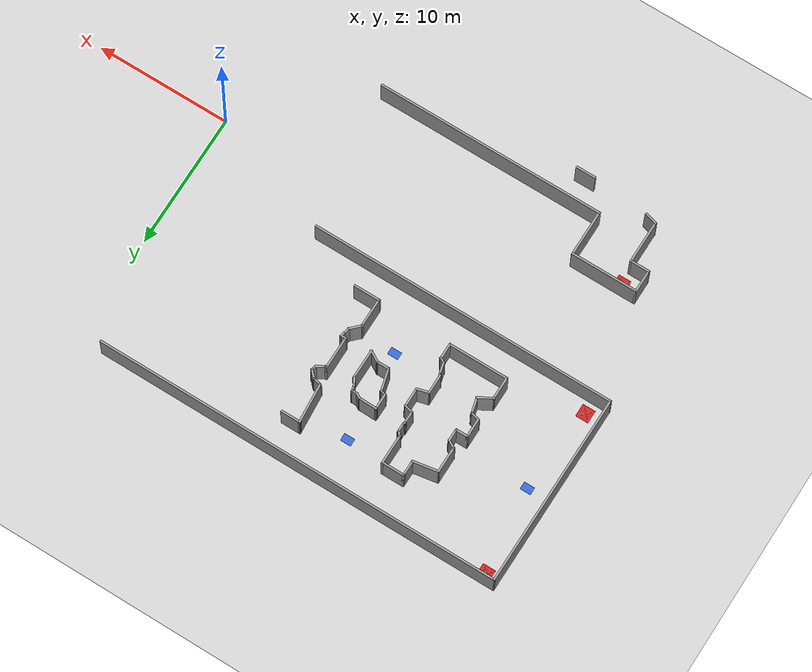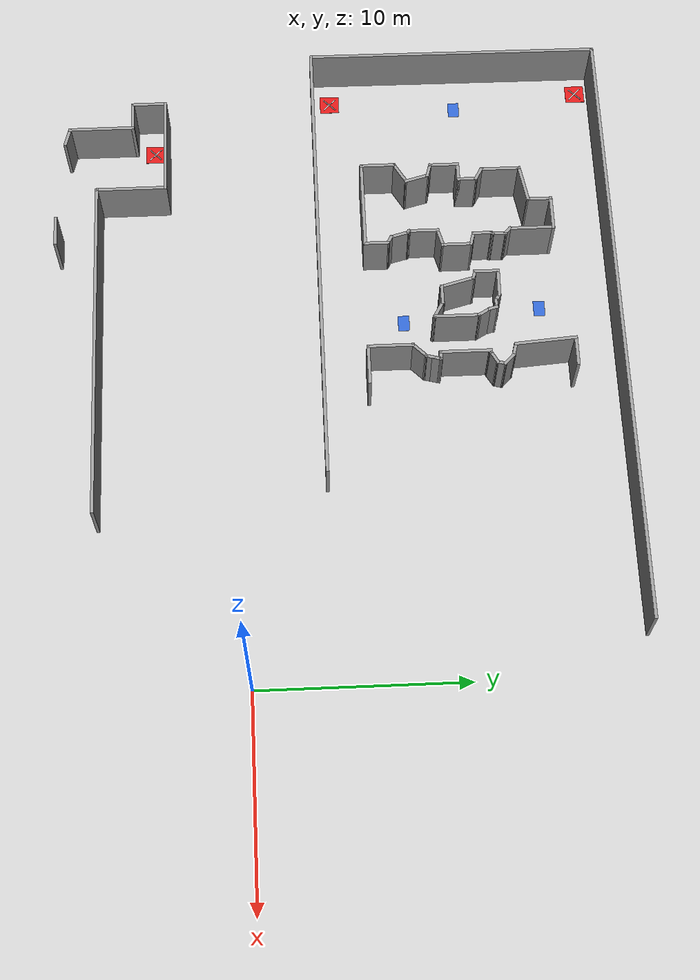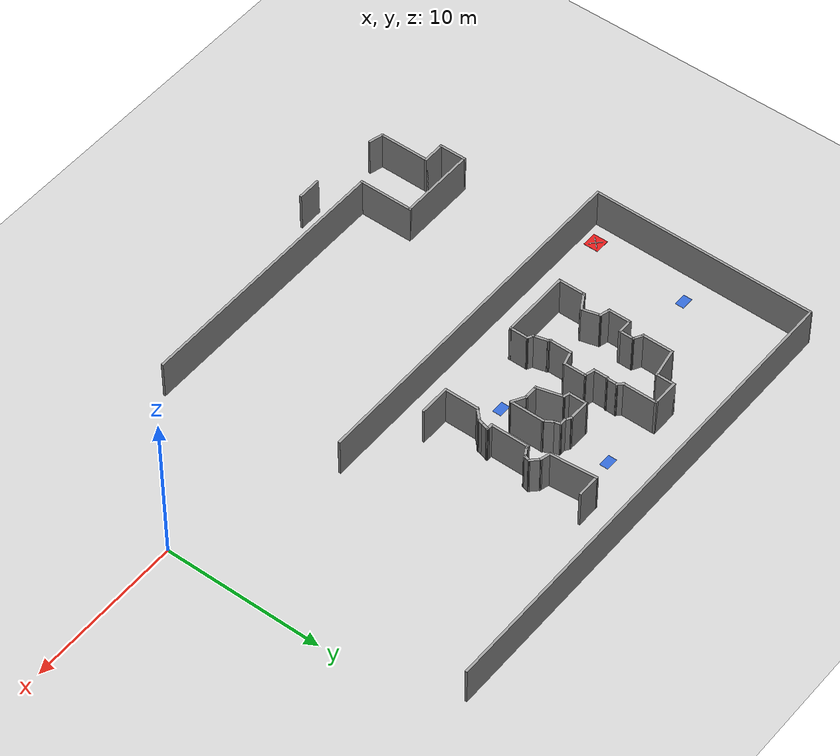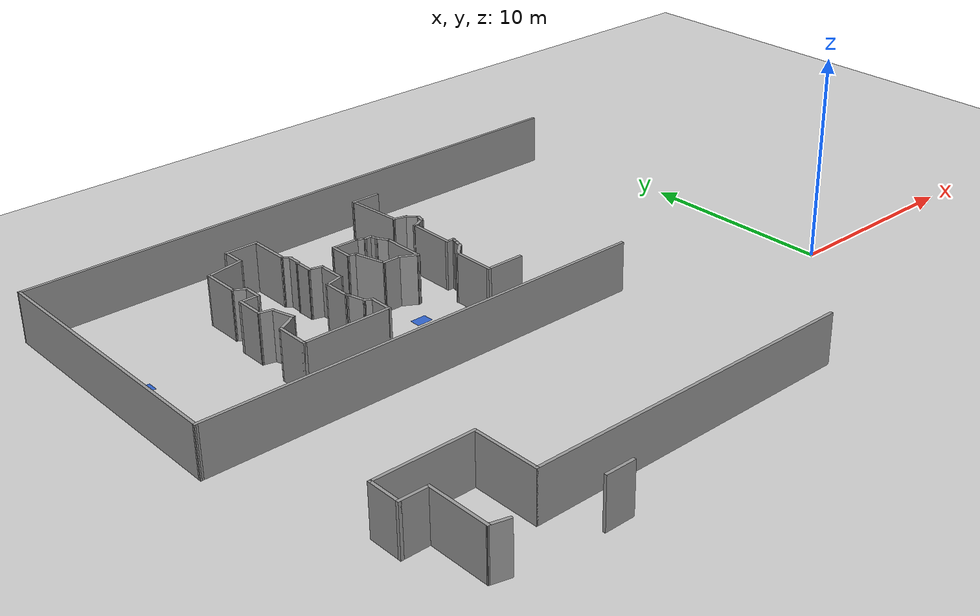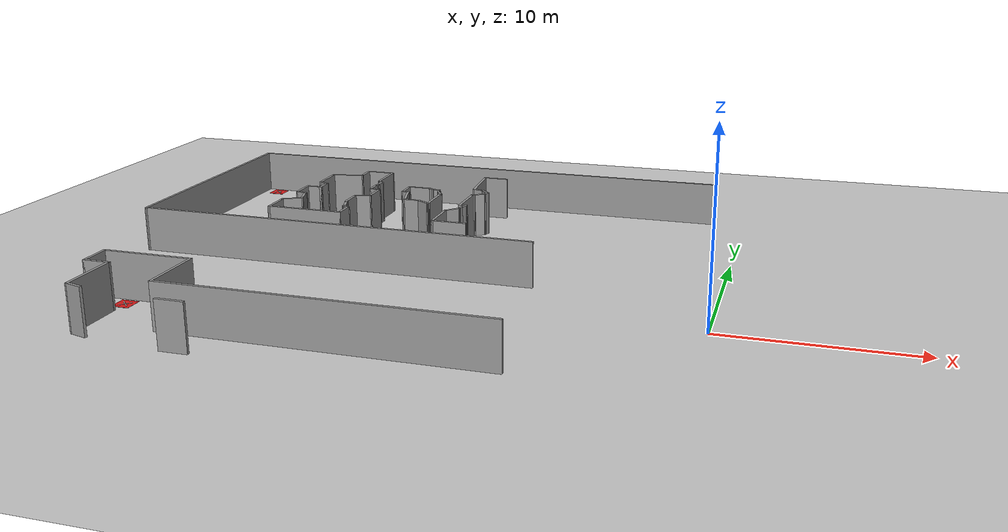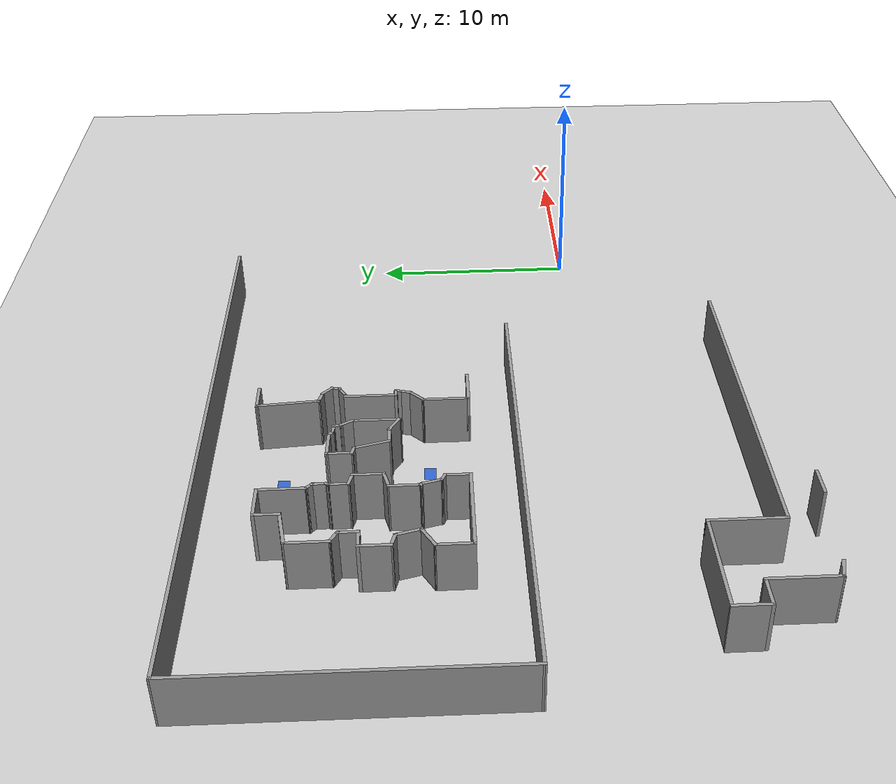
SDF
<sdf version="1.7">
 <world name="default">
  <model name="ground_plane">
   <static>1</static>
   <link name="link">
    <collision name="collision">
     <geometry><plane><normal>0 0 1</normal><size>100 100</size></plane></geometry>
     <surface>
      <contact><collide_bitmask>65535</collide_bitmask></contact>
      <friction><ode><mu>100</mu><mu2>50</mu2></ode></friction>
     </surface>
    </collision>
    <visual name="visual">
     <cast_shadows>0</cast_shadows>
     <geometry><plane><normal>0 0 1</normal><size>100 100</size></plane></geometry>
     <material>
      <script><uri>file://media/materials/scripts/gazebo.material</uri><name>Gazebo/Grey</name></script>
     </material>
    </visual>
   </link>
  </model>
  <model name="latest_world">
   <pose>-1.4911 -0.096187 0 0 -0 0</pose>
   <link name="Wall_0">
    <collision name="Wall_0_Collision">
     <geometry><box><size>30.25 0.15 2.5</size></box></geometry>
     <pose>0 0 1.25 0 -0 0</pose>
    </collision>
    <visual name="Wall_0_Visual">
     <pose>0 0 1.25 0 -0 0</pose>
     <geometry><box><size>30.25 0.15 2.5</size></box></geometry>
     <material>
      <script><uri>file://media/materials/scripts/gazebo.material</uri><name>Gazebo/Grey</name></script>
      <ambient>1 1 1 1</ambient>
     </material>
     <meta><layer>0</layer></meta>
    </visual>
    <pose>-15.4949 18.0157 0 0 -0 0</pose>
   </link>
   <link name="Wall_133">
    <collision name="Wall_133_Collision">
     <geometry><box><size>1.5 0.15 2.5</size></box></geometry>
     <pose>0 0 1.25 0 -0 0</pose>
    </collision>
    <visual name="Wall_133_Visual">
     <pose>0 0 1.25 0 -0 0</pose>
     <geometry><box><size>1.5 0.15 2.5</size></box></geometry>
     <material>
      <script><uri>file://media/materials/scripts/gazebo.material</uri><name>Gazebo/Grey</name></script>
      <ambient>1 1 1 1</ambient>
     </material>
     <meta><layer>0</layer></meta>
    </visual>
    <pose>-21.0709 -8.83374 0 0 -0 3.14159</pose>
   </link>
   <link name="Wall_146">
    <collision name="Wall_146_Collision">
     <geometry><box><size>1 0.15 2.5</size></box></geometry>
     <pose>0 0 1.25 0 -0 0</pose>
    </collision>
    <visual name="Wall_146_Visual">
     <pose>0 0 1.25 0 -0 0</pose>
     <geometry><box><size>1 0.15 2.5</size></box></geometry>
     <material>
      <script><uri>file://media/materials/scripts/gazebo.material</uri><name>Gazebo/Grey</name></script>
      <ambient>1 1 1 1</ambient>
     </material>
     <meta><layer>0</layer></meta>
    </visual>
    <pose>-26.3772 -8.33625 0 0 -0 2.87979</pose>
   </link>
   <link name="Wall_147">
    <collision name="Wall_147_Collision">
     <geometry><box><size>3.25 0.15 2.5</size></box></geometry>
     <pose>0 0 1.25 0 -0 0</pose>
    </collision>
    <visual name="Wall_147_Visual">
     <pose>0 0 1.25 0 -0 0</pose>
     <geometry><box><size>3.25 0.15 2.5</size></box></geometry>
     <material>
      <script><uri>file://media/materials/scripts/gazebo.material</uri><name>Gazebo/Grey</name></script>
      <ambient>1 1 1 1</ambient>
     </material>
     <meta><layer>0</layer></meta>
    </visual>
    <pose>-26.7877 -6.67626 0 0 -0 1.5708</pose>
   </link>
   <link name="Wall_148">
    <collision name="Wall_148_Collision">
     <geometry><box><size>1.5 0.15 2.5</size></box></geometry>
     <pose>0 0 1.25 0 -0 0</pose>
    </collision>
    <visual name="Wall_148_Visual">
     <pose>0 0 1.25 0 -0 0</pose>
     <geometry><box><size>1.5 0.15 2.5</size></box></geometry>
     <material>
      <script><uri>file://media/materials/scripts/gazebo.material</uri><name>Gazebo/Grey</name></script>
      <ambient>1 1 1 1</ambient>
     </material>
     <meta><layer>0</layer></meta>
    </visual>
    <pose>-27.4627 -5.12626 0 0 -0 3.14159</pose>
   </link>
   <link name="Wall_149">
    <collision name="Wall_149_Collision">
     <geometry><box><size>1.75 0.15 2.5</size></box></geometry>
     <pose>0 0 1.25 0 -0 0</pose>
    </collision>
    <visual name="Wall_149_Visual">
     <pose>0 0 1.25 0 -0 0</pose>
     <geometry><box><size>1.75 0.15 2.5</size></box></geometry>
     <material>
      <script><uri>file://media/materials/scripts/gazebo.material</uri><name>Gazebo/Grey</name></script>
      <ambient>1 1 1 1</ambient>
     </material>
     <meta><layer>0</layer></meta>
    </visual>
    <pose>-28.1377 -4.32626 0 0 -0 1.5708</pose>
   </link>
   <link name="Wall_150">
    <collision name="Wall_150_Collision">
     <geometry><box><size>5 0.15 2.5</size></box></geometry>
     <pose>0 0 1.25 0 -0 0</pose>
    </collision>
    <visual name="Wall_150_Visual">
     <pose>0 0 1.25 0 -0 0</pose>
     <geometry><box><size>5 0.15 2.5</size></box></geometry>
     <material>
      <script><uri>file://media/materials/scripts/gazebo.material</uri><name>Gazebo/Grey</name></script>
      <ambient>1 1 1 1</ambient>
     </material>
     <meta><layer>0</layer></meta>
    </visual>
    <pose>-25.7127 -3.52626 0 0 -0 0</pose>
   </link>
   <link name="Wall_151">
    <collision name="Wall_151_Collision">
     <geometry><box><size>3.5 0.15 2.5</size></box></geometry>
     <pose>0 0 1.25 0 -0 0</pose>
    </collision>
    <visual name="Wall_151_Visual">
     <pose>0 0 1.25 0 -0 0</pose>
     <geometry><box><size>3.5 0.15 2.5</size></box></geometry>
     <material>
      <script><uri>file://media/materials/scripts/gazebo.material</uri><name>Gazebo/Grey</name></script>
      <ambient>1 1 1 1</ambient>
     </material>
     <meta><layer>0</layer></meta>
    </visual>
    <pose>-23.2877 -5.20126 0 0 -0 -1.5708</pose>
   </link>
   <link name="Wall_152">
    <collision name="Wall_152_Collision">
     <geometry><box><size>17 0.15 2.5</size></box></geometry>
     <pose>0 0 1.25 0 -0 0</pose>
    </collision>
    <visual name="Wall_152_Visual">
     <pose>0 0 1.25 0 -0 0</pose>
     <geometry><box><size>17 0.15 2.5</size></box></geometry>
     <material>
      <script><uri>file://media/materials/scripts/gazebo.material</uri><name>Gazebo/Grey</name></script>
      <ambient>1 1 1 1</ambient>
     </material>
     <meta><layer>0</layer></meta>
    </visual>
    <pose>-14.8627 -6.87626 0 0 -0 0</pose>
   </link>
   <link name="Wall_156">
    <collision name="Wall_156_Collision">
     <geometry><box><size>22.75 0.15 2.5</size></box></geometry>
     <pose>0 0 1.25 0 -0 0</pose>
    </collision>
    <visual name="Wall_156_Visual">
     <pose>0 0 1.25 0 -0 0</pose>
     <geometry><box><size>22.75 0.15 2.5</size></box></geometry>
     <material>
      <script><uri>file://media/materials/scripts/gazebo.material</uri><name>Gazebo/Grey</name></script>
      <ambient>1 1 1 1</ambient>
     </material>
     <meta><layer>0</layer></meta>
    </visual>
    <pose>-19.3377 3.82374 0 0 -0 3.14159</pose>
   </link>
   <link name="Wall_157">
    <collision name="Wall_157_Collision">
     <geometry><box><size>14.3423 0.15 2.5</size></box></geometry>
     <pose>0 0 1.25 0 -0 0</pose>
    </collision>
    <visual name="Wall_157_Visual">
     <pose>0 0 1.25 0 -0 0</pose>
     <geometry><box><size>14.3423 0.15 2.5</size></box></geometry>
     <material>
      <script><uri>file://media/materials/scripts/gazebo.material</uri><name>Gazebo/Grey</name></script>
      <ambient>1 1 1 1</ambient>
     </material>
     <meta><layer>0</layer></meta>
    </visual>
    <pose>-30.5913 10.9197 0 0 -0 1.56426</pose>
   </link>
   <link name="Wall_159">
    <collision name="Wall_159_Collision">
     <geometry><box><size>2 0.15 2.5</size></box></geometry>
     <pose>0 0 1.25 0 -0 0</pose>
    </collision>
    <visual name="Wall_159_Visual">
     <pose>0 0 1.25 0 -0 0</pose>
     <geometry><box><size>2 0.15 2.5</size></box></geometry>
     <material>
      <script><uri>file://media/materials/scripts/gazebo.material</uri><name>Gazebo/Grey</name></script>
      <ambient>1 1 1 1</ambient>
     </material>
     <meta><layer>0</layer></meta>
    </visual>
    <pose>-23.7095 12.8715 0 0 -0 -1.5708</pose>
   </link>
   <link name="Wall_160">
    <collision name="Wall_160_Collision">
     <geometry><box><size>0.75 0.15 2.5</size></box></geometry>
     <pose>0 0 1.25 0 -0 0</pose>
    </collision>
    <visual name="Wall_160_Visual">
     <pose>0 0 1.25 0 -0 0</pose>
     <geometry><box><size>0.75 0.15 2.5</size></box></geometry>
     <material>
      <script><uri>file://media/materials/scripts/gazebo.material</uri><name>Gazebo/Grey</name></script>
      <ambient>1 1 1 1</ambient>
     </material>
     <meta><layer>0</layer></meta>
    </visual>
    <pose>-23.4497 11.7965 0 0 -0 -0.523599</pose>
   </link>
   <link name="Wall_161">
    <collision name="Wall_161_Collision">
     <geometry><box><size>1 0.15 2.5</size></box></geometry>
     <pose>0 0 1.25 0 -0 0</pose>
    </collision>
    <visual name="Wall_161_Visual">
     <pose>0 0 1.25 0 -0 0</pose>
     <geometry><box><size>1 0.15 2.5</size></box></geometry>
     <material>
      <script><uri>file://media/materials/scripts/gazebo.material</uri><name>Gazebo/Grey</name></script>
      <ambient>1 1 1 1</ambient>
     </material>
     <meta><layer>0</layer></meta>
    </visual>
    <pose>-23.1899 11.2215 0 0 -0 -1.5708</pose>
   </link>
   <link name="Wall_162">
    <collision name="Wall_162_Collision">
     <geometry><box><size>1 0.15 2.5</size></box></geometry>
     <pose>0 0 1.25 0 -0 0</pose>
    </collision>
    <visual name="Wall_162_Visual">
     <pose>0 0 1.25 0 -0 0</pose>
     <geometry><box><size>1 0.15 2.5</size></box></geometry>
     <material>
      <script><uri>file://media/materials/scripts/gazebo.material</uri><name>Gazebo/Grey</name></script>
      <ambient>1 1 1 1</ambient>
     </material>
     <meta><layer>0</layer></meta>
    </visual>
    <pose>-23.6149 10.7965 0 0 -0 3.14159</pose>
   </link>
   <link name="Wall_163">
    <collision name="Wall_163_Collision">
     <geometry><box><size>1.5 0.15 2.5</size></box></geometry>
     <pose>0 0 1.25 0 -0 0</pose>
    </collision>
    <visual name="Wall_163_Visual">
     <pose>0 0 1.25 0 -0 0</pose>
     <geometry><box><size>1.5 0.15 2.5</size></box></geometry>
     <material>
      <script><uri>file://media/materials/scripts/gazebo.material</uri><name>Gazebo/Grey</name></script>
      <ambient>1 1 1 1</ambient>
     </material>
     <meta><layer>0</layer></meta>
    </visual>
    <pose>-24.0399 10.1215 0 0 -0 -1.5708</pose>
   </link>
   <link name="Wall_164">
    <collision name="Wall_164_Collision">
     <geometry><box><size>0.75 0.15 2.5</size></box></geometry>
     <pose>0 0 1.25 0 -0 0</pose>
    </collision>
    <visual name="Wall_164_Visual">
     <pose>0 0 1.25 0 -0 0</pose>
     <geometry><box><size>0.75 0.15 2.5</size></box></geometry>
     <material>
      <script><uri>file://media/materials/scripts/gazebo.material</uri><name>Gazebo/Grey</name></script>
      <ambient>1 1 1 1</ambient>
     </material>
     <meta><layer>0</layer></meta>
    </visual>
    <pose>-23.7501 9.36881 0 0 -0 -0.261799</pose>
   </link>
   <link name="Wall_165">
    <collision name="Wall_165_Collision">
     <geometry><box><size>1.25 0.15 2.5</size></box></geometry>
     <pose>0 0 1.25 0 -0 0</pose>
    </collision>
    <visual name="Wall_165_Visual">
     <pose>0 0 1.25 0 -0 0</pose>
     <geometry><box><size>1.25 0.15 2.5</size></box></geometry>
     <material>
      <script><uri>file://media/materials/scripts/gazebo.material</uri><name>Gazebo/Grey</name></script>
      <ambient>1 1 1 1</ambient>
     </material>
     <meta><layer>0</layer></meta>
    </visual>
    <pose>-23.318 8.7599 0 0 -0 -1.309</pose>
   </link>
   <link name="Wall_166">
    <collision name="Wall_166_Collision">
     <geometry><box><size>1.25 0.15 2.5</size></box></geometry>
     <pose>0 0 1.25 0 -0 0</pose>
    </collision>
    <visual name="Wall_166_Visual">
     <pose>0 0 1.25 0 -0 0</pose>
     <geometry><box><size>1.25 0.15 2.5</size></box></geometry>
     <material>
      <script><uri>file://media/materials/scripts/gazebo.material</uri><name>Gazebo/Grey</name></script>
      <ambient>1 1 1 1</ambient>
     </material>
     <meta><layer>0</layer></meta>
    </visual>
    <pose>-23.6519 7.95364 0 0 -0 -2.61799</pose>
   </link>
   <link name="Wall_167">
    <collision name="Wall_167_Collision">
     <geometry><box><size>1.75 0.15 2.5</size></box></geometry>
     <pose>0 0 1.25 0 -0 0</pose>
    </collision>
    <visual name="Wall_167_Visual">
     <pose>0 0 1.25 0 -0 0</pose>
     <geometry><box><size>1.75 0.15 2.5</size></box></geometry>
     <material>
      <script><uri>file://media/materials/scripts/gazebo.material</uri><name>Gazebo/Grey</name></script>
      <ambient>1 1 1 1</ambient>
     </material>
     <meta><layer>0</layer></meta>
    </visual>
    <pose>-24.1282 6.87864 0 0 -0 -1.5708</pose>
   </link>
   <link name="Wall_168">
    <collision name="Wall_168_Collision">
     <geometry><box><size>4.5 0.15 2.5</size></box></geometry>
     <pose>0 0 1.25 0 -0 0</pose>
    </collision>
    <visual name="Wall_168_Visual">
     <pose>0 0 1.25 0 -0 0</pose>
     <geometry><box><size>4.5 0.15 2.5</size></box></geometry>
     <material>
      <script><uri>file://media/materials/scripts/gazebo.material</uri><name>Gazebo/Grey</name></script>
      <ambient>1 1 1 1</ambient>
     </material>
     <meta><layer>0</layer></meta>
    </visual>
    <pose>-21.9532 6.07864 0 0 -0 0</pose>
   </link>
   <link name="Wall_169">
    <collision name="Wall_169_Collision">
     <geometry><box><size>1.25 0.15 2.5</size></box></geometry>
     <pose>0 0 1.25 0 -0 0</pose>
    </collision>
    <visual name="Wall_169_Visual">
     <pose>0 0 1.25 0 -0 0</pose>
     <geometry><box><size>1.25 0.15 2.5</size></box></geometry>
     <material>
      <script><uri>file://media/materials/scripts/gazebo.material</uri><name>Gazebo/Grey</name></script>
      <ambient>1 1 1 1</ambient>
     </material>
     <meta><layer>0</layer></meta>
    </visual>
    <pose>-19.7782 6.62864 0 0 -0 1.5708</pose>
   </link>
   <link name="Wall_170">
    <collision name="Wall_170_Collision">
     <geometry><box><size>0.5 0.15 2.5</size></box></geometry>
     <pose>0 0 1.25 0 -0 0</pose>
    </collision>
    <visual name="Wall_170_Visual">
     <pose>0 0 1.25 0 -0 0</pose>
     <geometry><box><size>0.5 0.15 2.5</size></box></geometry>
     <material>
      <script><uri>file://media/materials/scripts/gazebo.material</uri><name>Gazebo/Grey</name></script>
      <ambient>1 1 1 1</ambient>
     </material>
     <meta><layer>0</layer></meta>
    </visual>
    <pose>-19.9298 7.26614 0 0 -0 2.61799</pose>
   </link>
   <link name="Wall_171">
    <collision name="Wall_171_Collision">
     <geometry><box><size>1 0.15 2.5</size></box></geometry>
     <pose>0 0 1.25 0 -0 0</pose>
    </collision>
    <visual name="Wall_171_Visual">
     <pose>0 0 1.25 0 -0 0</pose>
     <geometry><box><size>1 0.15 2.5</size></box></geometry>
     <material>
      <script><uri>file://media/materials/scripts/gazebo.material</uri><name>Gazebo/Grey</name></script>
      <ambient>1 1 1 1</ambient>
     </material>
     <meta><layer>0</layer></meta>
    </visual>
    <pose>-20.1913 7.76416 0 0 -0 1.8326</pose>
   </link>
   <link name="Wall_172">
    <collision name="Wall_172_Collision">
     <geometry><box><size>0.25 0.15 2.5</size></box></geometry>
     <pose>0 0 1.25 0 -0 0</pose>
    </collision>
    <visual name="Wall_172_Visual">
     <pose>0 0 1.25 0 -0 0</pose>
     <geometry><box><size>0.25 0.15 2.5</size></box></geometry>
     <material>
      <script><uri>file://media/materials/scripts/gazebo.material</uri><name>Gazebo/Grey</name></script>
      <ambient>1 1 1 1</ambient>
     </material>
     <meta><layer>0</layer></meta>
    </visual>
    <pose>-20.3367 8.21004 0 0 -0 2.35619</pose>
   </link>
   <link name="Wall_173">
    <collision name="Wall_173_Collision">
     <geometry><box><size>1.5 0.15 2.5</size></box></geometry>
     <pose>0 0 1.25 0 -0 0</pose>
    </collision>
    <visual name="Wall_173_Visual">
     <pose>0 0 1.25 0 -0 0</pose>
     <geometry><box><size>1.5 0.15 2.5</size></box></geometry>
     <material>
      <script><uri>file://media/materials/scripts/gazebo.material</uri><name>Gazebo/Grey</name></script>
      <ambient>1 1 1 1</ambient>
     </material>
     <meta><layer>0</layer></meta>
    </visual>
    <pose>-20.372 8.92039 0 0 -0 1.5708</pose>
   </link>
   <link name="Wall_174">
    <collision name="Wall_174_Collision">
     <geometry><box><size>1 0.15 2.5</size></box></geometry>
     <pose>0 0 1.25 0 -0 0</pose>
    </collision>
    <visual name="Wall_174_Visual">
     <pose>0 0 1.25 0 -0 0</pose>
     <geometry><box><size>1 0.15 2.5</size></box></geometry>
     <material>
      <script><uri>file://media/materials/scripts/gazebo.material</uri><name>Gazebo/Grey</name></script>
      <ambient>1 1 1 1</ambient>
     </material>
     <meta><layer>0</layer></meta>
    </visual>
    <pose>-19.9615 9.70539 0 0 -0 0.261799</pose>
   </link>
   <link name="Wall_175">
    <collision name="Wall_175_Collision">
     <geometry><box><size>1.5 0.15 2.5</size></box></geometry>
     <pose>0 0 1.25 0 -0 0</pose>
    </collision>
    <visual name="Wall_175_Visual">
     <pose>0 0 1.25 0 -0 0</pose>
     <geometry><box><size>1.5 0.15 2.5</size></box></geometry>
     <material>
      <script><uri>file://media/materials/scripts/gazebo.material</uri><name>Gazebo/Grey</name></script>
      <ambient>1 1 1 1</ambient>
     </material>
     <meta><layer>0</layer></meta>
    </visual>
    <pose>-19.551 10.4904 0 0 -0 1.5708</pose>
   </link>
   <link name="Wall_176">
    <collision name="Wall_176_Collision">
     <geometry><box><size>0.75 0.15 2.5</size></box></geometry>
     <pose>0 0 1.25 0 -0 0</pose>
    </collision>
    <visual name="Wall_176_Visual">
     <pose>0 0 1.25 0 -0 0</pose>
     <geometry><box><size>0.75 0.15 2.5</size></box></geometry>
     <material>
      <script><uri>file://media/materials/scripts/gazebo.material</uri><name>Gazebo/Grey</name></script>
      <ambient>1 1 1 1</ambient>
     </material>
     <meta><layer>0</layer></meta>
    </visual>
    <pose>-19.8408 11.243 0 0 -0 2.87979</pose>
   </link>
   <link name="Wall_177">
    <collision name="Wall_177_Collision">
     <geometry><box><size>1 0.15 2.5</size></box></geometry>
     <pose>0 0 1.25 0 -0 0</pose>
    </collision>
    <visual name="Wall_177_Visual">
     <pose>0 0 1.25 0 -0 0</pose>
     <geometry><box><size>1 0.15 2.5</size></box></geometry>
     <material>
      <script><uri>file://media/materials/scripts/gazebo.material</uri><name>Gazebo/Grey</name></script>
      <ambient>1 1 1 1</ambient>
     </material>
     <meta><layer>0</layer></meta>
    </visual>
    <pose>-20.1306 11.7457 0 0 -0 1.5708</pose>
   </link>
   <link name="Wall_178">
    <collision name="Wall_178_Collision">
     <geometry><box><size>0.25 0.15 2.5</size></box></geometry>
     <pose>0 0 1.25 0 -0 0</pose>
    </collision>
    <visual name="Wall_178_Visual">
     <pose>0 0 1.25 0 -0 0</pose>
     <geometry><box><size>0.25 0.15 2.5</size></box></geometry>
     <material>
      <script><uri>file://media/materials/scripts/gazebo.material</uri><name>Gazebo/Grey</name></script>
      <ambient>1 1 1 1</ambient>
     </material>
     <meta><layer>0</layer></meta>
    </visual>
    <pose>-20.1056 12.214 0 0 -0 1.0472</pose>
   </link>
   <link name="Wall_179">
    <collision name="Wall_179_Collision">
     <geometry><box><size>0.75 0.15 2.5</size></box></geometry>
     <pose>0 0 1.25 0 -0 0</pose>
    </collision>
    <visual name="Wall_179_Visual">
     <pose>0 0 1.25 0 -0 0</pose>
     <geometry><box><size>0.75 0.15 2.5</size></box></geometry>
     <material>
      <script><uri>file://media/materials/scripts/gazebo.material</uri><name>Gazebo/Grey</name></script>
      <ambient>1 1 1 1</ambient>
     </material>
     <meta><layer>0</layer></meta>
    </visual>
    <pose>-20.0806 12.5573 0 0 -0 1.5708</pose>
   </link>
   <link name="Wall_180">
    <collision name="Wall_180_Collision">
     <geometry><box><size>0.5 0.15 2.5</size></box></geometry>
     <pose>0 0 1.25 0 -0 0</pose>
    </collision>
    <visual name="Wall_180_Visual">
     <pose>0 0 1.25 0 -0 0</pose>
     <geometry><box><size>0.5 0.15 2.5</size></box></geometry>
     <material>
      <script><uri>file://media/materials/scripts/gazebo.material</uri><name>Gazebo/Grey</name></script>
      <ambient>1 1 1 1</ambient>
     </material>
     <meta><layer>0</layer></meta>
    </visual>
    <pose>-20.2043 12.981 0 0 -0 2.35619</pose>
   </link>
   <link name="Wall_181">
    <collision name="Wall_181_Collision">
     <geometry><box><size>2.25 0.15 2.5</size></box></geometry>
     <pose>0 0 1.25 0 -0 0</pose>
    </collision>
    <visual name="Wall_181_Visual">
     <pose>0 0 1.25 0 -0 0</pose>
     <geometry><box><size>2.25 0.15 2.5</size></box></geometry>
     <material>
      <script><uri>file://media/materials/scripts/gazebo.material</uri><name>Gazebo/Grey</name></script>
      <ambient>1 1 1 1</ambient>
     </material>
     <meta><layer>0</layer></meta>
    </visual>
    <pose>-20.3281 14.1548 0 0 -0 1.5708</pose>
   </link>
   <link name="Wall_182">
    <collision name="Wall_182_Collision">
     <geometry><box><size>1.75 0.15 2.5</size></box></geometry>
     <pose>0 0 1.25 0 -0 0</pose>
    </collision>
    <visual name="Wall_182_Visual">
     <pose>0 0 1.25 0 -0 0</pose>
     <geometry><box><size>1.75 0.15 2.5</size></box></geometry>
     <material>
      <script><uri>file://media/materials/scripts/gazebo.material</uri><name>Gazebo/Grey</name></script>
      <ambient>1 1 1 1</ambient>
     </material>
     <meta><layer>0</layer></meta>
    </visual>
    <pose>-21.1281 15.2048 0 0 -0 3.14159</pose>
   </link>
   <link name="Wall_183">
    <collision name="Wall_183_Collision">
     <geometry><box><size>1.25 0.15 2.5</size></box></geometry>
     <pose>0 0 1.25 0 -0 0</pose>
    </collision>
    <visual name="Wall_183_Visual">
     <pose>0 0 1.25 0 -0 0</pose>
     <geometry><box><size>1.25 0.15 2.5</size></box></geometry>
     <material>
      <script><uri>file://media/materials/scripts/gazebo.material</uri><name>Gazebo/Grey</name></script>
      <ambient>1 1 1 1</ambient>
     </material>
     <meta><layer>0</layer></meta>
    </visual>
    <pose>-21.9281 14.6548 0 0 -0 -1.5708</pose>
   </link>
   <link name="Wall_186">
    <collision name="Wall_186_Collision">
     <geometry><box><size>1.95791 0.15 2.5</size></box></geometry>
     <pose>0 0 1.25 0 -0 0</pose>
    </collision>
    <visual name="Wall_186_Visual">
     <pose>0 0 1.25 0 -0 0</pose>
     <geometry><box><size>1.95791 0.15 2.5</size></box></geometry>
     <material>
      <script><uri>file://media/materials/scripts/gazebo.material</uri><name>Gazebo/Grey</name></script>
      <ambient>1 1 1 1</ambient>
     </material>
     <meta><layer>0</layer></meta>
    </visual>
    <pose>-22.8188 13.9506 0 0 -0 0.171375</pose>
   </link>
   <link name="Wall_188">
    <collision name="Wall_188_Collision">
     <geometry><box><size>1.25 0.15 2.5</size></box></geometry>
     <pose>0 0 1.25 0 -0 0</pose>
    </collision>
    <visual name="Wall_188_Visual">
     <pose>0 0 1.25 0 -0 0</pose>
     <geometry><box><size>1.25 0.15 2.5</size></box></geometry>
     <material>
      <script><uri>file://media/materials/scripts/gazebo.material</uri><name>Gazebo/Grey</name></script>
      <ambient>1 1 1 1</ambient>
     </material>
     <meta><layer>0</layer></meta>
    </visual>
    <pose>-18.0298 11.7985 0 0 -0 -1.5708</pose>
   </link>
   <link name="Wall_189">
    <collision name="Wall_189_Collision">
     <geometry><box><size>0.5 0.15 2.5</size></box></geometry>
     <pose>0 0 1.25 0 -0 0</pose>
    </collision>
    <visual name="Wall_189_Visual">
     <pose>0 0 1.25 0 -0 0</pose>
     <geometry><box><size>0.5 0.15 2.5</size></box></geometry>
     <material>
      <script><uri>file://media/materials/scripts/gazebo.material</uri><name>Gazebo/Grey</name></script>
      <ambient>1 1 1 1</ambient>
     </material>
     <meta><layer>0</layer></meta>
    </visual>
    <pose>-17.8608 11.2032 0 0 -0 -0.261799</pose>
   </link>
   <link name="Wall_190">
    <collision name="Wall_190_Collision">
     <geometry><box><size>1.75 0.15 2.5</size></box></geometry>
     <pose>0 0 1.25 0 -0 0</pose>
    </collision>
    <visual name="Wall_190_Visual">
     <pose>0 0 1.25 0 -0 0</pose>
     <geometry><box><size>1.75 0.15 2.5</size></box></geometry>
     <material>
      <script><uri>file://media/materials/scripts/gazebo.material</uri><name>Gazebo/Grey</name></script>
      <ambient>1 1 1 1</ambient>
     </material>
     <meta><layer>0</layer></meta>
    </visual>
    <pose>-17.4847 10.3852 0 0 -0 -1.309</pose>
   </link>
   <link name="Wall_191">
    <collision name="Wall_191_Collision">
     <geometry><box><size>1 0.15 2.5</size></box></geometry>
     <pose>0 0 1.25 0 -0 0</pose>
    </collision>
    <visual name="Wall_191_Visual">
     <pose>0 0 1.25 0 -0 0</pose>
     <geometry><box><size>1 0.15 2.5</size></box></geometry>
     <material>
      <script><uri>file://media/materials/scripts/gazebo.material</uri><name>Gazebo/Grey</name></script>
      <ambient>1 1 1 1</ambient>
     </material>
     <meta><layer>0</layer></meta>
    </visual>
    <pose>-16.8526 9.61244 0 0 -0 0</pose>
   </link>
   <link name="Wall_192">
    <collision name="Wall_192_Collision">
     <geometry><box><size>1 0.15 2.5</size></box></geometry>
     <pose>0 0 1.25 0 -0 0</pose>
    </collision>
    <visual name="Wall_192_Visual">
     <pose>0 0 1.25 0 -0 0</pose>
     <geometry><box><size>1 0.15 2.5</size></box></geometry>
     <material>
      <script><uri>file://media/materials/scripts/gazebo.material</uri><name>Gazebo/Grey</name></script>
      <ambient>1 1 1 1</ambient>
     </material>
     <meta><layer>0</layer></meta>
    </visual>
    <pose>-16.0596 9.39995 0 0 -0 -0.523599</pose>
   </link>
   <link name="Wall_193">
    <collision name="Wall_193_Collision">
     <geometry><box><size>2.25 0.15 2.5</size></box></geometry>
     <pose>0 0 1.25 0 -0 0</pose>
    </collision>
    <visual name="Wall_193_Visual">
     <pose>0 0 1.25 0 -0 0</pose>
     <geometry><box><size>2.25 0.15 2.5</size></box></geometry>
     <material>
      <script><uri>file://media/materials/scripts/gazebo.material</uri><name>Gazebo/Grey</name></script>
      <ambient>1 1 1 1</ambient>
     </material>
     <meta><layer>0</layer></meta>
    </visual>
    <pose>-15.6915 10.2374 0 0 -0 1.5708</pose>
   </link>
   <link name="Wall_194">
    <collision name="Wall_194_Collision">
     <geometry><box><size>0.75 0.15 2.5</size></box></geometry>
     <pose>0 0 1.25 0 -0 0</pose>
    </collision>
    <visual name="Wall_194_Visual">
     <pose>0 0 1.25 0 -0 0</pose>
     <geometry><box><size>0.75 0.15 2.5</size></box></geometry>
     <material>
      <script><uri>file://media/materials/scripts/gazebo.material</uri><name>Gazebo/Grey</name></script>
      <ambient>1 1 1 1</ambient>
     </material>
     <meta><layer>0</layer></meta>
    </visual>
    <pose>-15.8415 11.5473 0 0 -0 2.0944</pose>
   </link>
   <link name="Wall_195">
    <collision name="Wall_195_Collision">
     <geometry><box><size>0.5 0.15 2.5</size></box></geometry>
     <pose>0 0 1.25 0 -0 0</pose>
    </collision>
    <visual name="Wall_195_Visual">
     <pose>0 0 1.25 0 -0 0</pose>
     <geometry><box><size>0.5 0.15 2.5</size></box></geometry>
     <material>
      <script><uri>file://media/materials/scripts/gazebo.material</uri><name>Gazebo/Grey</name></script>
      <ambient>1 1 1 1</ambient>
     </material>
     <meta><layer>0</layer></meta>
    </visual>
    <pose>-16.0368 11.9761 0 0 -0 1.8326</pose>
   </link>
   <link name="Wall_196">
    <collision name="Wall_196_Collision">
     <geometry><box><size>0.5 0.15 2.5</size></box></geometry>
     <pose>0 0 1.25 0 -0 0</pose>
    </collision>
    <visual name="Wall_196_Visual">
     <pose>0 0 1.25 0 -0 0</pose>
     <geometry><box><size>0.5 0.15 2.5</size></box></geometry>
     <material>
      <script><uri>file://media/materials/scripts/gazebo.material</uri><name>Gazebo/Grey</name></script>
      <ambient>1 1 1 1</ambient>
     </material>
     <meta><layer>0</layer></meta>
    </visual>
    <pose>-16.2571 12.1451 0 0 -0 3.14159</pose>
   </link>
   <link name="Wall_197">
    <collision name="Wall_197_Collision">
     <geometry><box><size>0.5 0.15 2.5</size></box></geometry>
     <pose>0 0 1.25 0 -0 0</pose>
    </collision>
    <visual name="Wall_197_Visual">
     <pose>0 0 1.25 0 -0 0</pose>
     <geometry><box><size>0.5 0.15 2.5</size></box></geometry>
     <material>
      <script><uri>file://media/materials/scripts/gazebo.material</uri><name>Gazebo/Grey</name></script>
      <ambient>1 1 1 1</ambient>
     </material>
     <meta><layer>0</layer></meta>
    </visual>
    <pose>-16.5836 12.2326 0 0 -0 2.61799</pose>
   </link>
   <link name="Wall_198">
    <collision name="Wall_198_Collision">
     <geometry><box><size>1.44492 0.15 2.5</size></box></geometry>
     <pose>0 0 1.25 0 -0 0</pose>
    </collision>
    <visual name="Wall_198_Visual">
     <pose>0 0 1.25 0 -0 0</pose>
     <geometry><box><size>1.44492 0.15 2.5</size></box></geometry>
     <material>
      <script><uri>file://media/materials/scripts/gazebo.material</uri><name>Gazebo/Grey</name></script>
      <ambient>1 1 1 1</ambient>
     </material>
     <meta><layer>0</layer></meta>
    </visual>
    <pose>-17.3825 12.3343 0 0 -0 3.11968</pose>
   </link>
   <link name="Wall_211">
    <collision name="Wall_211_Collision">
     <geometry><box><size>1.5 0.15 2.5</size></box></geometry>
     <pose>0 0 1.25 0 -0 0</pose>
    </collision>
    <visual name="Wall_211_Visual">
     <pose>0 0 1.25 0 -0 0</pose>
     <geometry><box><size>1.5 0.15 2.5</size></box></geometry>
     <material>
      <script><uri>file://media/materials/scripts/gazebo.material</uri><name>Gazebo/Grey</name></script>
      <ambient>1 1 1 1</ambient>
     </material>
     <meta><layer>0</layer></meta>
    </visual>
    <pose>-13.6508 15.7495 0 0 -0 0</pose>
   </link>
   <link name="Wall_223">
    <collision name="Wall_223_Collision">
     <geometry><box><size>2 0.15 2.5</size></box></geometry>
     <pose>0 0 1.25 0 -0 0</pose>
    </collision>
    <visual name="Wall_223_Visual">
     <pose>0 0 1.25 0 -0 0</pose>
     <geometry><box><size>2 0.15 2.5</size></box></geometry>
     <material>
      <script><uri>file://media/materials/scripts/gazebo.material</uri><name>Gazebo/Grey</name></script>
      <ambient>1 1 1 1</ambient>
     </material>
     <meta><layer>0</layer></meta>
    </visual>
    <pose>-13.3175 5.96837 0 0 -0 3.14159</pose>
   </link>
   <link name="Wall_224">
    <collision name="Wall_224_Collision">
     <geometry><box><size>2.25 0.15 2.5</size></box></geometry>
     <pose>0 0 1.25 0 -0 0</pose>
    </collision>
    <visual name="Wall_224_Visual">
     <pose>0 0 1.25 0 -0 0</pose>
     <geometry><box><size>2.25 0.15 2.5</size></box></geometry>
     <material>
      <script><uri>file://media/materials/scripts/gazebo.material</uri><name>Gazebo/Grey</name></script>
      <ambient>1 1 1 1</ambient>
     </material>
     <meta><layer>0</layer></meta>
    </visual>
    <pose>-14.2425 7.01837 0 0 -0 1.5708</pose>
   </link>
   <link name="Wall_225">
    <collision name="Wall_225_Collision">
     <geometry><box><size>1 0.15 2.5</size></box></geometry>
     <pose>0 0 1.25 0 -0 0</pose>
    </collision>
    <visual name="Wall_225_Visual">
     <pose>0 0 1.25 0 -0 0</pose>
     <geometry><box><size>1 0.15 2.5</size></box></geometry>
     <material>
      <script><uri>file://media/materials/scripts/gazebo.material</uri><name>Gazebo/Grey</name></script>
      <ambient>1 1 1 1</ambient>
     </material>
     <meta><layer>0</layer></meta>
    </visual>
    <pose>-13.942 8.36889 0 0 -0 0.785398</pose>
   </link>
   <link name="Wall_226">
    <collision name="Wall_226_Collision">
     <geometry><box><size>0.5 0.15 2.5</size></box></geometry>
     <pose>0 0 1.25 0 -0 0</pose>
    </collision>
    <visual name="Wall_226_Visual">
     <pose>0 0 1.25 0 -0 0</pose>
     <geometry><box><size>0.5 0.15 2.5</size></box></geometry>
     <material>
      <script><uri>file://media/materials/scripts/gazebo.material</uri><name>Gazebo/Grey</name></script>
      <ambient>1 1 1 1</ambient>
     </material>
     <meta><layer>0</layer></meta>
    </visual>
    <pose>-13.5962 8.83844 0 0 -0 1.309</pose>
   </link>
   <link name="Wall_227">
    <collision name="Wall_227_Collision">
     <geometry><box><size>0.5 0.15 2.5</size></box></geometry>
     <pose>0 0 1.25 0 -0 0</pose>
    </collision>
    <visual name="Wall_227_Visual">
     <pose>0 0 1.25 0 -0 0</pose>
     <geometry><box><size>0.5 0.15 2.5</size></box></geometry>
     <material>
      <script><uri>file://media/materials/scripts/gazebo.material</uri><name>Gazebo/Grey</name></script>
      <ambient>1 1 1 1</ambient>
     </material>
     <meta><layer>0</layer></meta>
    </visual>
    <pose>-13.5056 9.17652 0 0 -0 1.309</pose>
   </link>
   <link name="Wall_228">
    <collision name="Wall_228_Collision">
     <geometry><box><size>0.5 0.15 2.5</size></box></geometry>
     <pose>0 0 1.25 0 -0 0</pose>
    </collision>
    <visual name="Wall_228_Visual">
     <pose>0 0 1.25 0 -0 0</pose>
     <geometry><box><size>0.5 0.15 2.5</size></box></geometry>
     <material>
      <script><uri>file://media/materials/scripts/gazebo.material</uri><name>Gazebo/Grey</name></script>
      <ambient>1 1 1 1</ambient>
     </material>
     <meta><layer>0</layer></meta>
    </visual>
    <pose>-13.6353 9.34555 0 0 -0 3.14159</pose>
   </link>
   <link name="Wall_229">
    <collision name="Wall_229_Collision">
     <geometry><box><size>2.5 0.15 2.5</size></box></geometry>
     <pose>0 0 1.25 0 -0 0</pose>
    </collision>
    <visual name="Wall_229_Visual">
     <pose>0 0 1.25 0 -0 0</pose>
     <geometry><box><size>2.5 0.15 2.5</size></box></geometry>
     <material>
      <script><uri>file://media/materials/scripts/gazebo.material</uri><name>Gazebo/Grey</name></script>
      <ambient>1 1 1 1</ambient>
     </material>
     <meta><layer>0</layer></meta>
    </visual>
    <pose>-13.8103 10.5206 0 0 -0 1.5708</pose>
   </link>
   <link name="Wall_230">
    <collision name="Wall_230_Collision">
     <geometry><box><size>0.25 0.15 2.5</size></box></geometry>
     <pose>0 0 1.25 0 -0 0</pose>
    </collision>
    <visual name="Wall_230_Visual">
     <pose>0 0 1.25 0 -0 0</pose>
     <geometry><box><size>0.25 0.15 2.5</size></box></geometry>
     <material>
      <script><uri>file://media/materials/scripts/gazebo.material</uri><name>Gazebo/Grey</name></script>
      <ambient>1 1 1 1</ambient>
     </material>
     <meta><layer>0</layer></meta>
    </visual>
    <pose>-13.7603 11.6956 0 0 -0 0</pose>
   </link>
   <link name="Wall_231">
    <collision name="Wall_231_Collision">
     <geometry><box><size>0.75 0.15 2.5</size></box></geometry>
     <pose>0 0 1.25 0 -0 0</pose>
    </collision>
    <visual name="Wall_231_Visual">
     <pose>0 0 1.25 0 -0 0</pose>
     <geometry><box><size>0.75 0.15 2.5</size></box></geometry>
     <material>
      <script><uri>file://media/materials/scripts/gazebo.material</uri><name>Gazebo/Grey</name></script>
      <ambient>1 1 1 1</ambient>
     </material>
     <meta><layer>0</layer></meta>
    </visual>
    <pose>-13.4505 11.8456 0 0 -0 0.523599</pose>
   </link>
   <link name="Wall_232">
    <collision name="Wall_232_Collision">
     <geometry><box><size>0.5 0.15 2.5</size></box></geometry>
     <pose>0 0 1.25 0 -0 0</pose>
    </collision>
    <visual name="Wall_232_Visual">
     <pose>0 0 1.25 0 -0 0</pose>
     <geometry><box><size>0.5 0.15 2.5</size></box></geometry>
     <material>
      <script><uri>file://media/materials/scripts/gazebo.material</uri><name>Gazebo/Grey</name></script>
      <ambient>1 1 1 1</ambient>
     </material>
     <meta><layer>0</layer></meta>
    </visual>
    <pose>-13.1454 12.1646 0 0 -0 1.309</pose>
   </link>
   <link name="Wall_233">
    <collision name="Wall_233_Collision">
     <geometry><box><size>0.75 0.15 2.5</size></box></geometry>
     <pose>0 0 1.25 0 -0 0</pose>
    </collision>
    <visual name="Wall_233_Visual">
     <pose>0 0 1.25 0 -0 0</pose>
     <geometry><box><size>0.75 0.15 2.5</size></box></geometry>
     <material>
      <script><uri>file://media/materials/scripts/gazebo.material</uri><name>Gazebo/Grey</name></script>
      <ambient>1 1 1 1</ambient>
     </material>
     <meta><layer>0</layer></meta>
    </visual>
    <pose>-13.3122 12.5458 0 0 -0 2.35619</pose>
   </link>
   <link name="Wall_234">
    <collision name="Wall_234_Collision">
     <geometry><box><size>0.75 0.15 2.5</size></box></geometry>
     <pose>0 0 1.25 0 -0 0</pose>
    </collision>
    <visual name="Wall_234_Visual">
     <pose>0 0 1.25 0 -0 0</pose>
     <geometry><box><size>0.75 0.15 2.5</size></box></geometry>
     <material>
      <script><uri>file://media/materials/scripts/gazebo.material</uri><name>Gazebo/Grey</name></script>
      <ambient>1 1 1 1</ambient>
     </material>
     <meta><layer>0</layer></meta>
    </visual>
    <pose>-13.8141 12.8355 0 0 -0 2.87979</pose>
   </link>
   <link name="Wall_235">
    <collision name="Wall_235_Collision">
     <geometry><box><size>2.99503 0.15 2.5</size></box></geometry>
     <pose>0 0 1.25 0 -0 0</pose>
    </collision>
    <visual name="Wall_235_Visual">
     <pose>0 0 1.25 0 -0 0</pose>
     <geometry><box><size>2.99503 0.15 2.5</size></box></geometry>
     <material>
      <script><uri>file://media/materials/scripts/gazebo.material</uri><name>Gazebo/Grey</name></script>
      <ambient>1 1 1 1</ambient>
     </material>
     <meta><layer>0</layer></meta>
    </visual>
    <pose>-14.2149 14.3314 0 0 -0 1.64888</pose>
   </link>
   <static>1</static>
  </model>
  <model name="semantic_marker_dead_end_0">
   <static>true</static>
   <pose>-31.050 17.250 0 0 0 0.0000</pose>
   <link name="link">
    <visual name="dead_end_patch">
     <pose>0 0 0.005 0 0 0</pose>
     <geometry><box><size>0.95 0.95 0.010</size></box></geometry>
     <material><ambient>0.85 0.10 0.10 1</ambient><diffuse>0.85 0.10 0.10 1</diffuse></material>
    </visual>
    <visual name="cross_bar_a">
     <pose>0 0 0.011 0 0 0.78</pose>
     <geometry><box><size>0.83 0.05 0.005</size></box></geometry>
     <material><ambient>0.98 0.98 0.98 1</ambient><diffuse>0.98 0.98 0.98 1</diffuse></material>
    </visual>
    <visual name="cross_bar_b">
     <pose>0 0 0.011 0 0 -0.78</pose>
     <geometry><box><size>0.83 0.05 0.005</size></box></geometry>
     <material><ambient>0.98 0.98 0.98 1</ambient><diffuse>0.98 0.98 0.98 1</diffuse></material>
    </visual>
   </link>
  </model>
  <model name="semantic_marker_dead_end_1">
   <static>true</static>
   <pose>-30.900 4.600 0 0 0 0.0000</pose>
   <link name="link">
    <visual name="dead_end_patch">
     <pose>0 0 0.005 0 0 0</pose>
     <geometry><box><size>0.95 0.95 0.010</size></box></geometry>
     <material><ambient>0.85 0.10 0.10 1</ambient><diffuse>0.85 0.10 0.10 1</diffuse></material>
    </visual>
    <visual name="cross_bar_a">
     <pose>0 0 0.011 0 0 0.78</pose>
     <geometry><box><size>0.83 0.05 0.005</size></box></geometry>
     <material><ambient>0.98 0.98 0.98 1</ambient><diffuse>0.98 0.98 0.98 1</diffuse></material>
    </visual>
    <visual name="cross_bar_b">
     <pose>0 0 0.011 0 0 -0.78</pose>
     <geometry><box><size>0.83 0.05 0.005</size></box></geometry>
     <material><ambient>0.98 0.98 0.98 1</ambient><diffuse>0.98 0.98 0.98 1</diffuse></material>
    </visual>
   </link>
  </model>
  <model name="semantic_marker_dead_end_11">
   <static>true</static>
   <pose>-28.250 -4.300 0 0 0 0.0000</pose>
   <link name="link">
    <visual name="dead_end_patch">
     <pose>0 0 0.005 0 0 0</pose>
     <geometry><box><size>0.95 0.95 0.010</size></box></geometry>
     <material><ambient>0.85 0.10 0.10 1</ambient><diffuse>0.85 0.10 0.10 1</diffuse></material>
    </visual>
    <visual name="cross_bar_a">
     <pose>0 0 0.011 0 0 0.78</pose>
     <geometry><box><size>0.83 0.05 0.005</size></box></geometry>
     <material><ambient>0.98 0.98 0.98 1</ambient><diffuse>0.98 0.98 0.98 1</diffuse></material>
    </visual>
    <visual name="cross_bar_b">
     <pose>0 0 0.011 0 0 -0.78</pose>
     <geometry><box><size>0.83 0.05 0.005</size></box></geometry>
     <material><ambient>0.98 0.98 0.98 1</ambient><diffuse>0.98 0.98 0.98 1</diffuse></material>
    </visual>
   </link>
  </model>
  <model name="semantic_marker_water_0">
   <static>true</static>
   <pose>-30.350 10.950 0 0 0 0.0000</pose>
   <link name="link">
    <visual name="water_patch">
     <pose>0 0 0.005 0 0 0</pose>
     <geometry><box><size>0.80 0.55 0.010</size></box></geometry>
     <material>
      <ambient>0.10 0.35 0.85 0.82</ambient>
      <diffuse>0.10 0.35 0.85 0.82</diffuse>
      <specular>0.95 0.95 0.95 1</specular>
     </material>
    </visual>
   </link>
  </model>
  <model name="semantic_marker_water_1">
   <static>true</static>
   <pose>-18.700 14.400 0 0 0 0.0000</pose>
   <link name="link">
    <visual name="water_patch">
     <pose>0 0 0.005 0 0 0</pose>
     <geometry><box><size>0.80 0.55 0.010</size></box></geometry>
     <material>
      <ambient>0.10 0.35 0.85 0.82</ambient>
      <diffuse>0.10 0.35 0.85 0.82</diffuse>
      <specular>0.95 0.95 0.95 1</specular>
     </material>
    </visual>
   </link>
  </model>
  <model name="semantic_marker_water_2">
   <static>true</static>
   <pose>-18.150 7.750 0 0 0 0.0000</pose>
   <link name="link">
    <visual name="water_patch">
     <pose>0 0 0.005 0 0 0</pose>
     <geometry><box><size>0.80 0.55 0.010</size></box></geometry>
     <material>
      <ambient>0.10 0.35 0.85 0.82</ambient>
      <diffuse>0.10 0.35 0.85 0.82</diffuse>
      <specular>0.95 0.95 0.95 1</specular>
     </material>
    </visual>
   </link>
  </model>
 </world>
</sdf>
